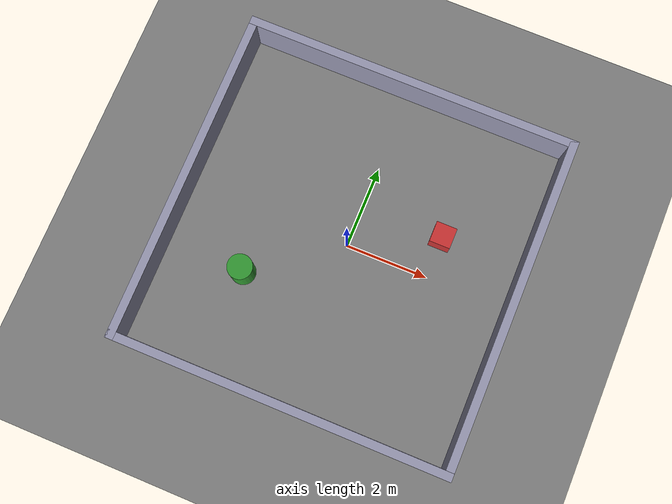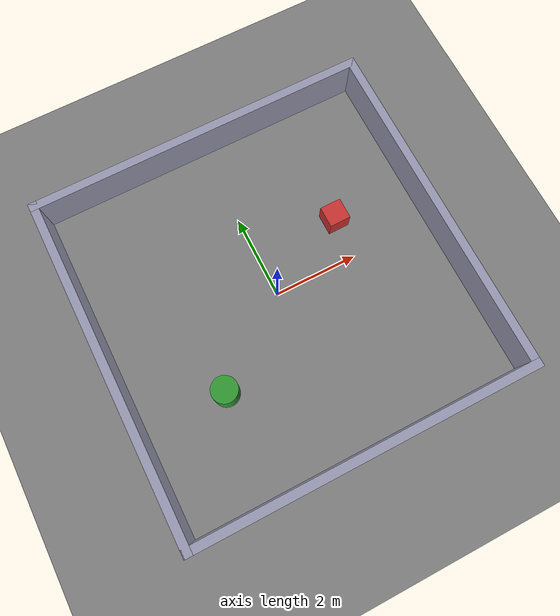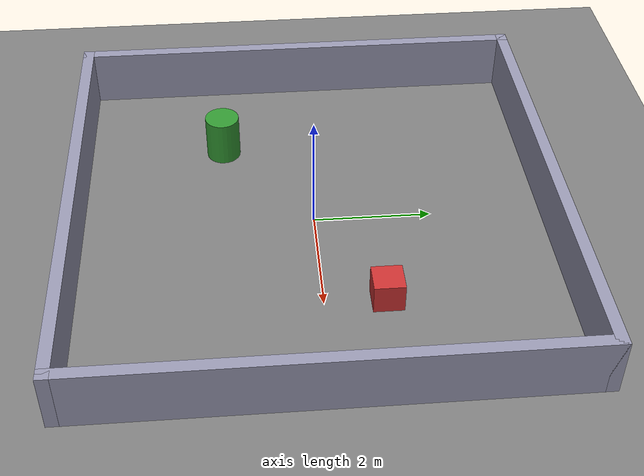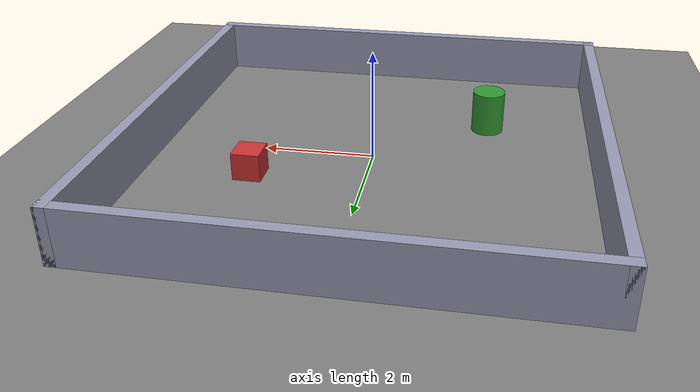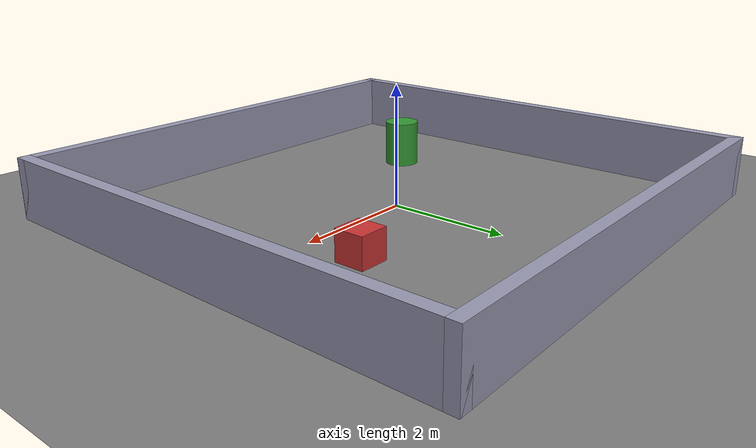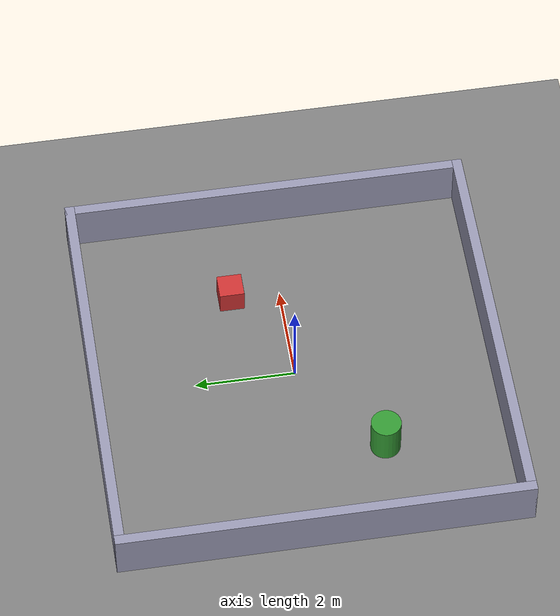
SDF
<?xml version="1.0" ?>
<sdf version="1.10">
  <world name="sensor_world">

    <!-- Core systems -->
    <plugin filename="gz-sim-physics-system" name="gz::sim::systems::Physics"/>
    <plugin filename="gz-sim-user-commands-system" name="gz::sim::systems::UserCommands"/>
    <plugin filename="gz-sim-scene-broadcaster-system" name="gz::sim::systems::SceneBroadcaster"/>
    <plugin filename="gz-sim-imu-system" name="gz::sim::systems::Imu"/>
    <!-- Sensors system: REQUIRED for lidar/cameras to produce data -->
    <plugin filename="gz-sim-sensors-system" name="gz::sim::systems::Sensors">
      <render_engine>ogre2</render_engine>
    </plugin>

    <physics name="1ms" type="ignored">
      <max_step_size>0.001</max_step_size>
      <real_time_factor>0.5</real_time_factor>
      <real_time_update_rate>1000</real_time_update_rate>
    </physics>

    <gravity>0 0 -9.81</gravity>

    <light type="directional" name="sun">
      <cast_shadows>true</cast_shadows>
      <pose>0 0 10 0 0 0</pose>
      <diffuse>0.8 0.8 0.8 1</diffuse>
      <specular>0.2 0.2 0.2 1</specular>
      <direction>-0.5 0.1 -0.9</direction>
    </light>

    <model name="ground_plane">
      <static>true</static>
      <link name="link">
        <collision name="collision">
          <geometry><plane><normal>0 0 1</normal><size>100 100</size></plane></geometry>
          <surface>
            <friction>
              <ode>
                <mu>1.5</mu>
                <mu2>1.5</mu2>
              </ode>
            </friction>
            <contact>
              <ode>
                <kp>1e6</kp>
                <kd>100</kd>
                <min_depth>0.001</min_depth>
              </ode>
            </contact>
          </surface>
        </collision>
        <visual name="visual">
          <geometry><plane><normal>0 0 1</normal><size>100 100</size></plane></geometry>
          <material><ambient>0.3 0.3 0.3 1</ambient><diffuse>0.5 0.5 0.5 1</diffuse></material>
        </visual>
      </link>
    </model>

    <!-- Room walls (an 8x8 m enclosure) -->
    <model name="wall_north">
      <static>true</static><pose>0 4 0.5 0 0 0</pose>
      <link name="link">
        <collision name="c"><geometry><box><size>8.2 0.2 1</size></box></geometry></collision>
        <visual name="v"><geometry><box><size>8.2 0.2 1</size></box></geometry>
          <material><ambient>0.6 0.6 0.7 1</ambient><diffuse>0.6 0.6 0.7 1</diffuse></material></visual>
      </link>
    </model>
    <model name="wall_south">
      <static>true</static><pose>0 -4 0.5 0 0 0</pose>
      <link name="link">
        <collision name="c"><geometry><box><size>8.2 0.2 1</size></box></geometry></collision>
        <visual name="v"><geometry><box><size>8.2 0.2 1</size></box></geometry>
          <material><ambient>0.6 0.6 0.7 1</ambient><diffuse>0.6 0.6 0.7 1</diffuse></material></visual>
      </link>
    </model>
    <model name="wall_east">
      <static>true</static><pose>4 0 0.5 0 0 0</pose>
      <link name="link">
        <collision name="c"><geometry><box><size>0.2 8.2 1</size></box></geometry></collision>
        <visual name="v"><geometry><box><size>0.2 8.2 1</size></box></geometry>
          <material><ambient>0.6 0.6 0.7 1</ambient><diffuse>0.6 0.6 0.7 1</diffuse></material></visual>
      </link>
    </model>
    <model name="wall_west">
      <static>true</static><pose>-4 0 0.5 0 0 0</pose>
      <link name="link">
        <collision name="c"><geometry><box><size>0.2 8.2 1</size></box></geometry></collision>
        <visual name="v"><geometry><box><size>0.2 8.2 1</size></box></geometry>
          <material><ambient>0.6 0.6 0.7 1</ambient><diffuse>0.6 0.6 0.7 1</diffuse></material></visual>
      </link>
    </model>

    <!-- A couple of obstacles inside the room -->
    <model name="box_obstacle">
      <static>true</static><pose>2 1 0.25 0 0 0</pose>
      <link name="link">
        <collision name="c"><geometry><box><size>0.5 0.5 0.5</size></box></geometry></collision>
        <visual name="v"><geometry><box><size>0.5 0.5 0.5</size></box></geometry>
          <material><ambient>0.8 0.2 0.2 1</ambient><diffuse>0.8 0.2 0.2 1</diffuse></material></visual>
      </link>
    </model>
    <model name="cyl_obstacle">
      <static>true</static><pose>-2 -1.5 0.4 0 0 0</pose>
      <link name="link">
        <collision name="c"><geometry><cylinder><radius>0.3</radius><length>0.8</length></cylinder></geometry></collision>
        <visual name="v"><geometry><cylinder><radius>0.3</radius><length>0.8</length></cylinder></geometry>
          <material><ambient>0.2 0.6 0.2 1</ambient><diffuse>0.2 0.6 0.2 1</diffuse></material></visual>
      </link>
    </model>

  </world>
</sdf>
